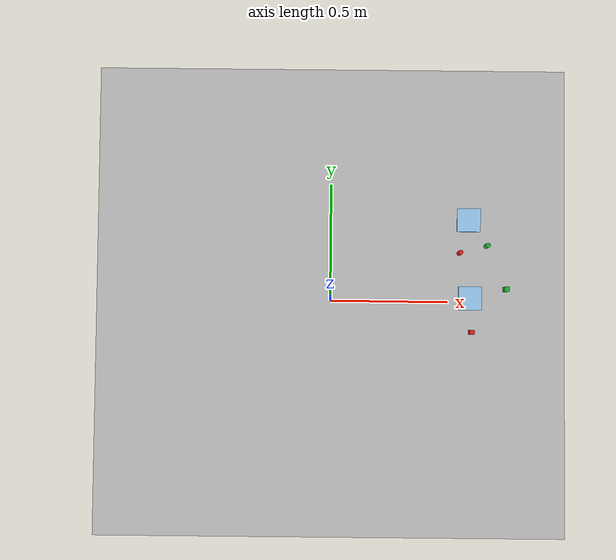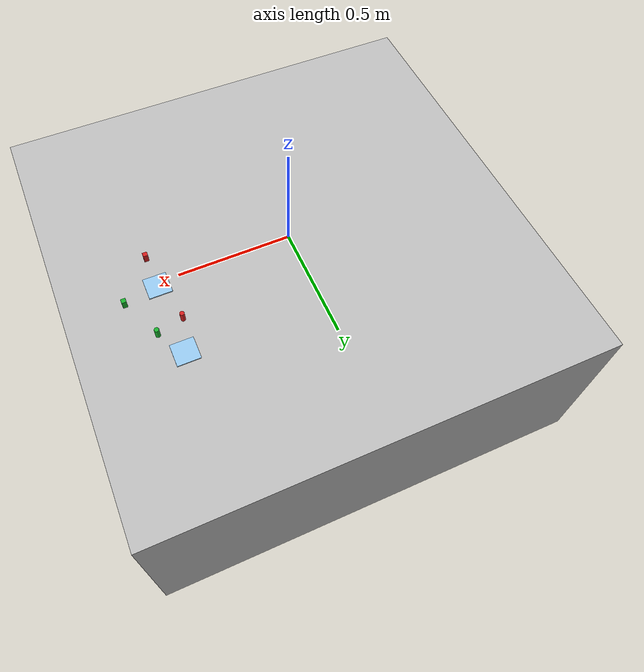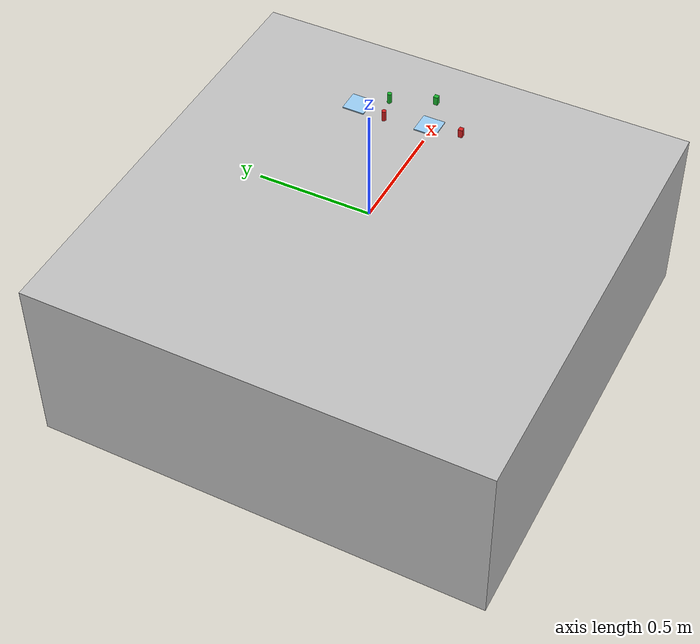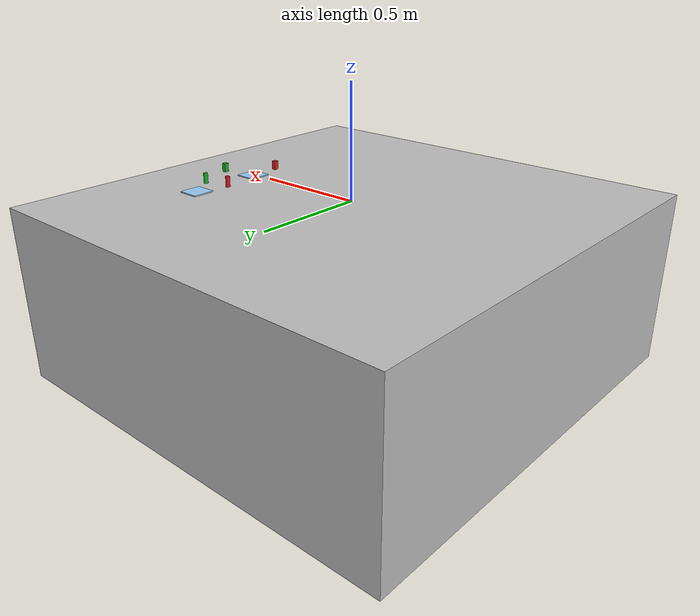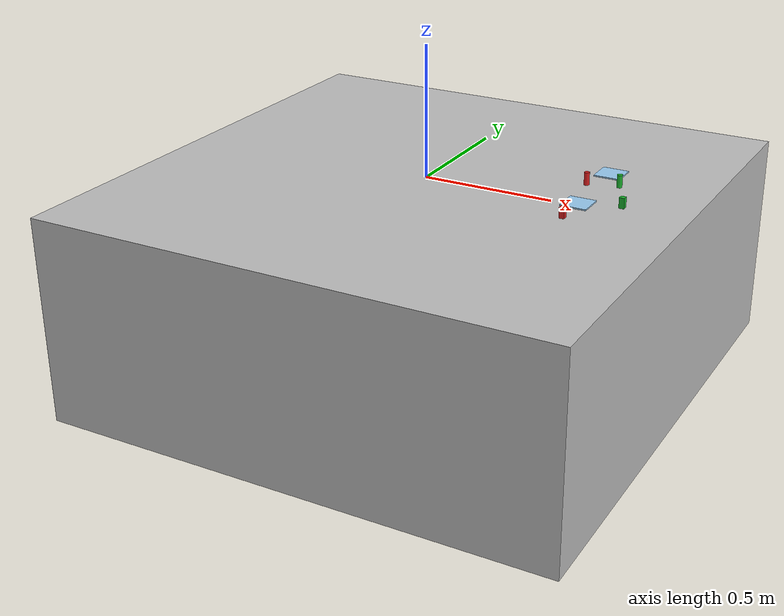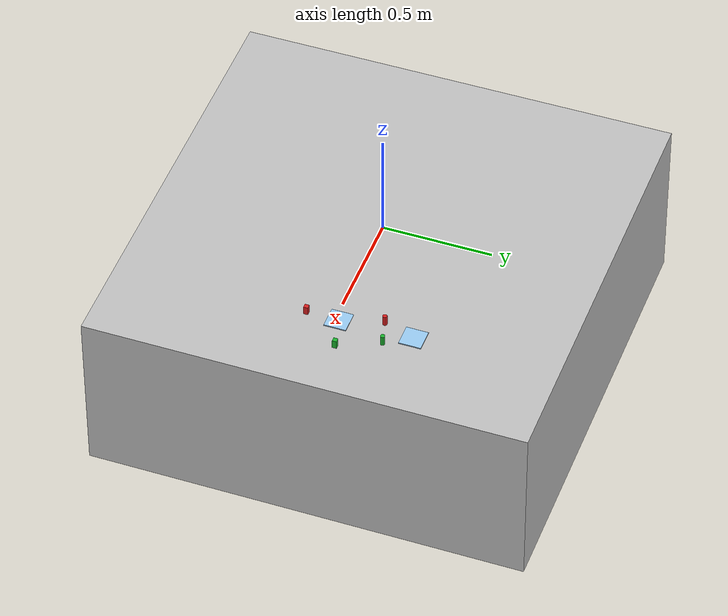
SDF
<?xml version="1.0"?>
<sdf version="1.8">
  <world name="ur_hande_tabletop">
    <physics name="1ms" type="ignored">
      <max_step_size>0.001</max_step_size>
      <real_time_factor>1.0</real_time_factor>
    </physics>

    <plugin
      filename="ignition-gazebo-physics-system"
      name="ignition::gazebo::systems::Physics">
    </plugin>
    <plugin
      filename="ignition-gazebo-sensors-system"
      name="ignition::gazebo::systems::Sensors">
      <render_engine>ogre</render_engine>
    </plugin>
    <plugin
      filename="ignition-gazebo-user-commands-system"
      name="ignition::gazebo::systems::UserCommands">
    </plugin>
    <plugin
      filename="ignition-gazebo-scene-broadcaster-system"
      name="ignition::gazebo::systems::SceneBroadcaster">
    </plugin>

    <scene>
      <ambient>0.6 0.6 0.6 1</ambient>
      <background>0.85 0.87 0.9 1</background>
      <shadows>true</shadows>
    </scene>

    <light type="directional" name="sun">
      <cast_shadows>true</cast_shadows>
      <pose>0 0 10 0 0 0</pose>
      <diffuse>0.9 0.9 0.9 1</diffuse>
      <specular>0.2 0.2 0.2 1</specular>
      <attenuation>
        <range>1000</range>
        <constant>0.9</constant>
        <linear>0.01</linear>
        <quadratic>0.001</quadratic>
      </attenuation>
      <direction>-0.4 0.2 -0.9</direction>
    </light>

    <!-- Static desk/table. Top surface sits at z=0 for easy robot spawn at z=0. -->
    <model name="table">
      <static>true</static>
      <pose>0 0 -0.4 0 0 0</pose>
      <link name="table_link">
        <collision name="table_collision">
          <geometry>
            <box>
              <size>2.0 2.0 0.8</size>
            </box>
          </geometry>
          <surface>
            <friction>
              <ode>
                <mu>1.0</mu>
                <mu2>1.0</mu2>
              </ode>
            </friction>
          </surface>
        </collision>
        <visual name="table_visual">
          <geometry>
            <box>
              <size>2.0 2.0 0.8</size>
            </box>
          </geometry>
          <material>
            <ambient>0.75 0.75 0.75 1</ambient>
            <diffuse>0.75 0.75 0.75 1</diffuse>
            <specular>0.1 0.1 0.1 1</specular>
          </material>
        </visual>
      </link>
    </model>

    <!-- Legacy single-arm scene-synced objects kept for the GazeboReplica_MR backup scene. -->
    <model name="Sync_RedCube">
      <static>false</static>
      <pose>0.59938 -0.12779 0.02000 0 0 0</pose>
      <link name="body_link">
        <inertial>
          <mass>0.03</mass>
          <inertia>
            <ixx>0.000002</ixx>
            <ixy>0</ixy>
            <ixz>0</ixz>
            <iyy>0.000002</iyy>
            <iyz>0</iyz>
            <izz>0.000002</izz>
          </inertia>
        </inertial>
        <collision name="collision">
          <geometry>
            <box>
              <size>0.020 0.020 0.040</size>
            </box>
          </geometry>
          <surface>
            <friction>
              <ode>
                <mu>0.9</mu>
                <mu2>0.9</mu2>
              </ode>
            </friction>
          </surface>
        </collision>
        <visual name="visual">
          <geometry>
            <box>
              <size>0.020 0.020 0.040</size>
            </box>
          </geometry>
          <material>
            <ambient>0.85 0.12 0.12 1</ambient>
            <diffuse>0.85 0.12 0.12 1</diffuse>
            <specular>0.1 0.1 0.1 1</specular>
          </material>
        </visual>
      </link>
    </model>

    <model name="Sync_GreenCube">
      <static>false</static>
      <pose>0.74638 0.05621 0.02000 0 0 0</pose>
      <link name="body_link">
        <inertial>
          <mass>0.03</mass>
          <inertia>
            <ixx>0.000002</ixx>
            <ixy>0</ixy>
            <ixz>0</ixz>
            <iyy>0.000002</iyy>
            <iyz>0</iyz>
            <izz>0.000002</izz>
          </inertia>
        </inertial>
        <collision name="collision">
          <geometry>
            <box>
              <size>0.020 0.020 0.040</size>
            </box>
          </geometry>
          <surface>
            <friction>
              <ode>
                <mu>0.9</mu>
                <mu2>0.9</mu2>
              </ode>
            </friction>
          </surface>
        </collision>
        <visual name="visual">
          <geometry>
            <box>
              <size>0.020 0.020 0.040</size>
            </box>
          </geometry>
          <material>
            <ambient>0.10 0.70 0.18 1</ambient>
            <diffuse>0.10 0.70 0.18 1</diffuse>
            <specular>0.1 0.1 0.1 1</specular>
          </material>
        </visual>
      </link>
    </model>

    <model name="Sync_RedCylinder">
      <static>false</static>
      <pose>0.54938 0.20921 0.02400 0 0 0</pose>
      <link name="body_link">
        <inertial>
          <mass>0.03</mass>
          <inertia>
            <ixx>0.0000015</ixx>
            <ixy>0</ixy>
            <ixz>0</ixz>
            <iyy>0.0000015</iyy>
            <iyz>0</iyz>
            <izz>0.0000010</izz>
          </inertia>
        </inertial>
        <collision name="collision">
          <geometry>
            <cylinder>
              <radius>0.010</radius>
              <length>0.048</length>
            </cylinder>
          </geometry>
          <surface>
            <friction>
              <ode>
                <mu>0.9</mu>
                <mu2>0.9</mu2>
              </ode>
            </friction>
          </surface>
        </collision>
        <visual name="visual">
          <geometry>
            <cylinder>
              <radius>0.010</radius>
              <length>0.048</length>
            </cylinder>
          </geometry>
          <material>
            <ambient>0.85 0.12 0.12 1</ambient>
            <diffuse>0.85 0.12 0.12 1</diffuse>
            <specular>0.1 0.1 0.1 1</specular>
          </material>
        </visual>
      </link>
    </model>

    <model name="Sync_GreenCylinder">
      <static>false</static>
      <pose>0.66438 0.24021 0.02400 0 0 0</pose>
      <link name="body_link">
        <inertial>
          <mass>0.03</mass>
          <inertia>
            <ixx>0.0000015</ixx>
            <ixy>0</ixy>
            <ixz>0</ixz>
            <iyy>0.0000015</iyy>
            <iyz>0</iyz>
            <izz>0.0000010</izz>
          </inertia>
        </inertial>
        <collision name="collision">
          <geometry>
            <cylinder>
              <radius>0.010</radius>
              <length>0.048</length>
            </cylinder>
          </geometry>
          <surface>
            <friction>
              <ode>
                <mu>0.9</mu>
                <mu2>0.9</mu2>
              </ode>
            </friction>
          </surface>
        </collision>
        <visual name="visual">
          <geometry>
            <cylinder>
              <radius>0.010</radius>
              <length>0.048</length>
            </cylinder>
          </geometry>
          <material>
            <ambient>0.10 0.70 0.18 1</ambient>
            <diffuse>0.10 0.70 0.18 1</diffuse>
            <specular>0.1 0.1 0.1 1</specular>
          </material>
        </visual>
      </link>
    </model>

    <model name="Sync_Plate_A">
      <static>true</static>
      <pose>0.58938 0.35221 0.00250 0 0 0</pose>
      <link name="plate_link">
        <collision name="collision">
          <geometry>
            <box>
              <size>0.100 0.100 0.005</size>
            </box>
          </geometry>
          <surface>
            <friction>
              <ode>
                <mu>1.0</mu>
                <mu2>1.0</mu2>
              </ode>
            </friction>
          </surface>
        </collision>
        <visual name="visual">
          <geometry>
            <box>
              <size>0.100 0.100 0.005</size>
            </box>
          </geometry>
          <material>
            <ambient>0.60 0.80 0.95 1</ambient>
            <diffuse>0.60 0.80 0.95 1</diffuse>
            <specular>0.08 0.08 0.08 1</specular>
          </material>
        </visual>
      </link>
    </model>

    <model name="Sync_Plate_B">
      <static>true</static>
      <pose>0.59638 0.01721 0.00250 0 0 0</pose>
      <link name="plate_link">
        <collision name="collision">
          <geometry>
            <box>
              <size>0.100 0.100 0.005</size>
            </box>
          </geometry>
          <surface>
            <friction>
              <ode>
                <mu>1.0</mu>
                <mu2>1.0</mu2>
              </ode>
            </friction>
          </surface>
        </collision>
        <visual name="visual">
          <geometry>
            <box>
              <size>0.100 0.100 0.005</size>
            </box>
          </geometry>
          <material>
            <ambient>0.60 0.80 0.95 1</ambient>
            <diffuse>0.60 0.80 0.95 1</diffuse>
            <specular>0.08 0.08 0.08 1</specular>
          </material>
        </visual>
      </link>
    </model>
  </world>
</sdf>
